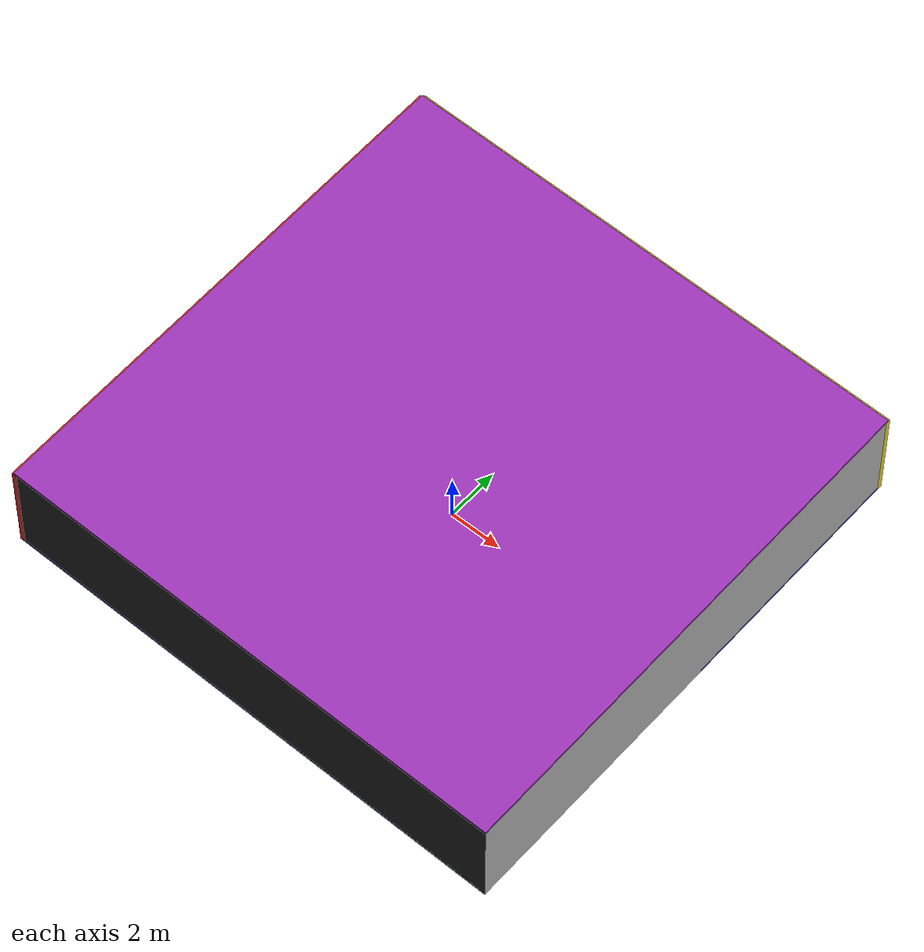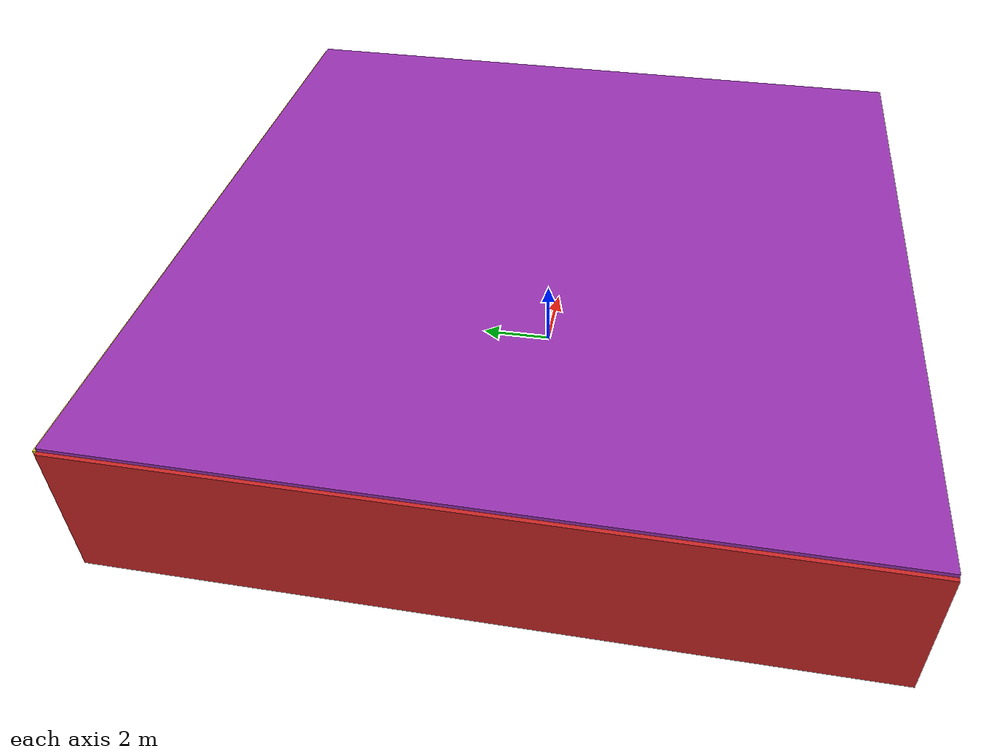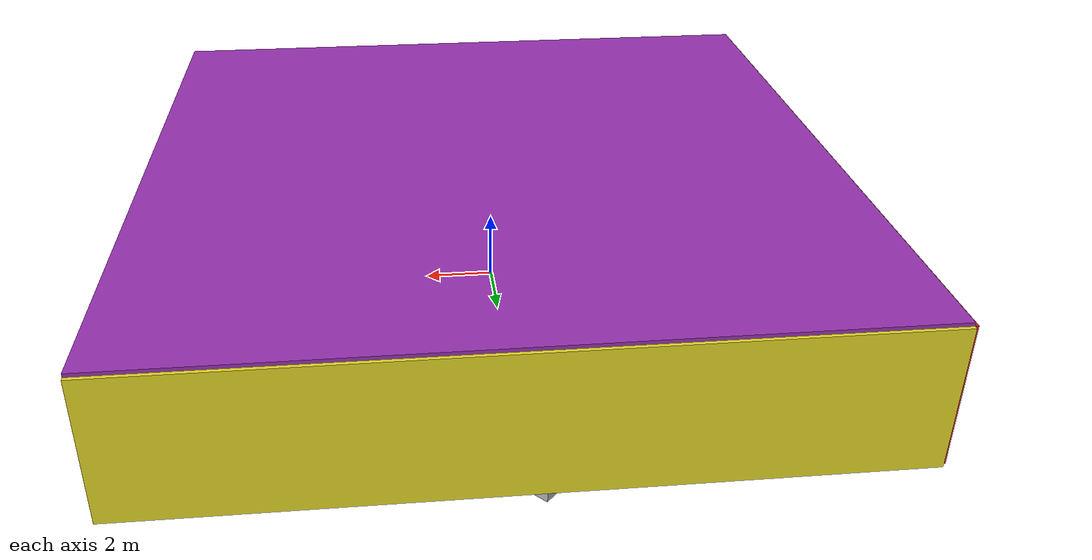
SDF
<sdf version="1.4">
 <world name="default">
  <physics type="ode">
   <max_step_size>0.001</max_step_size>
   <real_time_factor>1</real_time_factor>
   <real_time_update_rate>1000</real_time_update_rate>
   <gravity>0 0 -9.8</gravity>
  </physics>
  <scene><ambient>0.4 0.4 0.4 1</ambient><background>0.7 0.7 0.7 1</background><shadows>1</shadows></scene>
  <model name="Surrounding">
   <static>1</static>
   <link name="Ceiling">
    <collision name="Ceiling_Collision"><geometry><box><size>20 20 0.1</size></box></geometry></collision>
    <visual name="Ceiling_Visual">
     <geometry><box><size>20 20 0.1</size></box></geometry>
     <material>
      <script><uri>file://media/materials/scripts/gazebo.material</uri><name>Gazebo/Purple</name></script>
     </material>
    </visual>
    <pose>0 0 4.05 0 0 0</pose>
   </link>
   <link name="Wall_South">
    <collision name="Wall_South_Collision">
     <geometry><box><size>20 0 4</size></box></geometry>
     <pose>0 0 2 0 -0 0</pose>
    </collision>
    <visual name="Wall_South_Visual">
     <pose>0 0 2 0 -0 0</pose>
     <geometry><box><size>20 0 4</size></box></geometry>
     <material>
      <script><uri>file://media/materials/scripts/gazebo.material</uri><name>Gazebo/FlatBlack</name></script>
     </material>
    </visual>
    <velocity_decay><linear>0</linear><angular>0</angular></velocity_decay>
    <pose>0 -10 0 0 -0 0</pose>
   </link>
   <link name="Wall_East">
    <collision name="Wall_21_Collision">
     <geometry><box><size>20 0 4</size></box></geometry>
     <pose>0 0 2 0 -0 0</pose>
    </collision>
    <visual name="Wall_21_Visual">
     <pose>0 0 2 0 -0 0</pose>
     <geometry><box><size>20 0 4</size></box></geometry>
     <material>
      <script><uri>file://media/materials/scripts/gazebo.material</uri><name>Gazebo/PioneerBody</name></script>
     </material>
    </visual>
    <velocity_decay><linear>0</linear><angular>0</angular></velocity_decay>
    <pose>10 0 0 0 -0 1.5708</pose>
   </link>
   <link name="Wall_North">
    <collision name="Wall_22_Collision">
     <geometry><box><size>20 0.2 4</size></box></geometry>
     <pose>0 0 2 0 -0 0</pose>
    </collision>
    <visual name="Wall_22_Visual">
     <pose>0 0 2 0 -0 0</pose>
     <geometry><box><size>20 0.2 4</size></box></geometry>
     <material>
      <script><uri>file://media/materials/scripts/gazebo.material</uri><name>Gazebo/YellowGlow</name></script>
     </material>
    </visual>
    <velocity_decay><linear>0</linear><angular>0</angular></velocity_decay>
    <pose>0 10 0 0 -0 0</pose>
   </link>
   <link name="Wall_West">
    <collision name="Wall_23_Collision">
     <geometry><box><size>20 0.2 4</size></box></geometry>
     <pose>0 0 2 0 -0 0</pose>
    </collision>
    <visual name="Wall_23_Visual">
     <pose>0 0 2 0 -0 0</pose>
     <geometry><box><size>20 0.2 4</size></box></geometry>
     <material>
      <script><uri>file://media/materials/scripts/gazebo.material</uri><name>Gazebo/RedBright</name></script>
     </material>
    </visual>
    <velocity_decay><linear>0</linear><angular>0</angular></velocity_decay>
    <pose>-10 0 0 0 0 -1.5708</pose>
   </link>
   <link name="Ground_link">
    <collision name="collision">
     <pose>0 0 .05 0 -0 0</pose>
     <geometry><box><size>20 20 0.1</size></box></geometry>
    </collision>
    <visual name="visual">
     <pose>0 0 .05 0 -0 0</pose>
     <geometry><box><size>20 20 0.1</size></box></geometry>
     <material>
      <script><uri>file://media/materials/scripts/gazebo.material</uri><name>Gazebo/BlueLaser</name></script>
     </material>
    </visual>
   </link>
   <static>1</static>
  </model>
  <spherical_coordinates>
   <surface_model>EARTH_WGS84</surface_model>
   <latitude_deg>0</latitude_deg>
   <longitude_deg>0</longitude_deg>
   <elevation>0</elevation>
   <heading_deg>0</heading_deg>
  </spherical_coordinates>
  <light name="lightball_0" type="diffuse">
   <diffuse>0.8 0.8 0.8 1</diffuse>
   <specular>0.2 0.2 0.2 1</specular>
   <attenuation>
    <range>100</range>
    <constant>0.7</constant>
    <linear>0.01</linear>
    <quadratic>0.001</quadratic>
   </attenuation>
   <direction>-0.5 0.1 -0.9</direction>
   <pose>-0.483005078603 -0.752647233544 1.73619257576 0 0 0</pose>
  </light>
  <light name="lightball_1" type="diffuse">
   <diffuse>0.8 0.8 0.8 1</diffuse>
   <specular>0.2 0.2 0.2 1</specular>
   <attenuation>
    <range>100</range>
    <constant>0.7</constant>
    <linear>0.01</linear>
    <quadratic>0.001</quadratic>
   </attenuation>
   <direction>-0.5 0.1 -0.9</direction>
   <pose>7.53705358968 -9.08660090961 2.64028973013 0 0 0</pose>
  </light>
  <light name="lightball_2" type="diffuse">
   <diffuse>0.8 0.8 0.8 1</diffuse>
   <specular>0.2 0.2 0.2 1</specular>
   <attenuation>
    <range>100</range>
    <constant>0.7</constant>
    <linear>0.01</linear>
    <quadratic>0.001</quadratic>
   </attenuation>
   <direction>-0.5 0.1 -0.9</direction>
   <pose>-3.56652028978 -3.14183741809 3.76835317519 0 0 0</pose>
  </light>
  <light name="lightball_3" type="diffuse">
   <diffuse>0.8 0.8 0.8 1</diffuse>
   <specular>0.2 0.2 0.2 1</specular>
   <attenuation>
    <range>100</range>
    <constant>0.7</constant>
    <linear>0.01</linear>
    <quadratic>0.001</quadratic>
   </attenuation>
   <direction>-0.5 0.1 -0.9</direction>
   <pose>2.43847302157 -0.902981796308 0.724926505475 0 0 0</pose>
  </light>
  <include>
   <uri>model://robocup_3Dsim_goal</uri>
   <pose>-7.34495575315 -6.76962958311 0 0 0 2.08073904231</pose>
  </include>
  <include>
   <uri>model://textured_shapes</uri>
   <pose>-4.2152774114 7.05470534636 0 0 0 2.66995973755</pose>
  </include>
  <include>
   <uri>model://textured_shapes</uri>
   <pose>-1.46926427844 8.07451820303 0 0 0 2.35559684588</pose>
  </include>
  <include><uri>model://cabinet</uri><pose>1.63109740432 -7.57579969823 0 0 0 1.81059957771</pose></include>
  <include><uri>model://cabinet</uri><pose>2.09899283774 -3.81074302024 0 0 0 1.91524972567</pose></include>
  <include>
   <uri>model://robocup_3Dsim_goal</uri>
   <pose>1.75479689142 5.26766752537 0 0 0 2.45543128755</pose>
  </include>
  <include>
   <uri>model://textured_shapes</uri>
   <pose>1.41112125232 7.11511641622 0 0 0 2.8910197469</pose>
  </include>
  <include>
   <uri>model://construction_cone</uri>
   <pose>6.90894010163 -7.57038813766 0 0 0 1.07990807028</pose>
  </include>
  <include>
   <uri>model://robocup_3Dsim_goal</uri>
   <pose>7.62254748686 4.50536217961 0 0 0 0.246737579447</pose>
  </include>
 </world>
</sdf>

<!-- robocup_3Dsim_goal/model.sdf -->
<sdf version="1.5">
  <model name="robocup_3d_goal">
    <static>true</static>
    <link name="left_post">
      <pose>0 1.05 0.45 0 0 0</pose>
      <collision name="collision">
        <geometry>
          <cylinder>
            <radius>0.05</radius>
            <length>0.9</length>
          </cylinder>
        </geometry>
      </collision>
      <visual name="visual">
        <geometry>
          <cylinder>
            <radius>0.05</radius>
            <length>0.9</length>
          </cylinder>
        </geometry>
        <material>
          <script>
            <uri>file://media/materials/scripts/gazebo.material</uri>
            <name>Gazebo/ZincYellow</name>
          </script>
        </material>
      </visual>
    </link>
    <link name="left_support_horiz_lower">
      <pose>0.30 1.05 0.01 0 0 0</pose>
      <collision name="collision">
        <geometry>
          <box>
            <size>0.50 0.02 0.02</size>
          </box>
        </geometry>
      </collision>
      <visual name="visual">
        <geometry>
          <box>
            <size>0.50 0.02 0.02</size>
          </box>
        </geometry>
        <material>
          <script>
            <uri>file://media/materials/scripts/gazebo.material</uri>
            <name>Gazebo/White</name>
          </script>
        </material>
      </visual>
    </link>
    <link name="left_support_horiz_upper">
      <pose>0.30 1.05 0.79 0 0 0</pose>
      <collision name="collision">
        <geometry>
          <box>
            <size>0.50 0.02 0.02</size>
          </box>
        </geometry>
      </collision>
      <visual name="visual">
        <geometry>
          <box>
            <size>0.50 0.02 0.02</size>
          </box>
        </geometry>
        <material>
          <script>
            <uri>file://media/materials/scripts/gazebo.material</uri>
            <name>Gazebo/White</name>
          </script>
        </material>
      </visual>
    </link>
    <link name="left_support_vertical">
      <pose>0.56 1.05 0.4 0 1.5708 0</pose>
      <collision name="collision">
        <geometry>
          <box>
            <size>0.80 0.02 0.02</size>
          </box>
        </geometry>
      </collision>
      <visual name="visual">
        <geometry>
          <box>
            <size>0.80 0.02 0.02</size>
          </box>
        </geometry>
        <material>
          <script>
            <uri>file://media/materials/scripts/gazebo.material</uri>
            <name>Gazebo/White</name>
          </script>
        </material>
      </visual>
    </link>
    <link name="right_support_horiz_lower">
      <pose>0.30 -1.05 0.01 0 0 0</pose>
      <collision name="collision">
        <geometry>
          <box>
            <size>0.50 0.02 0.02</size>
          </box>
        </geometry>
      </collision>
      <visual name="visual">
        <geometry>
          <box>
            <size>0.50 0.02 0.02</size>
          </box>
        </geometry>
        <material>
          <script>
            <uri>file://media/materials/scripts/gazebo.material</uri>
            <name>Gazebo/White</name>
          </script>
        </material>
      </visual>
    </link>
    <link name="right_support_horiz_upper">
      <pose>0.30 -1.05 0.79 0 0 0</pose>
      <collision name="collision">
        <geometry>
          <box>
            <size>0.50 0.02 0.02</size>
          </box>
        </geometry>
      </collision>
      <visual name="visual">
        <geometry>
          <box>
            <size>0.50 0.02 0.02</size>
          </box>
        </geometry>
        <material>
          <script>
            <uri>file://media/materials/scripts/gazebo.material</uri>
            <name>Gazebo/White</name>
          </script>
        </material>
      </visual>
    </link>
    <link name="right_support_vertical">
      <pose>0.56 -1.05 0.4 0 1.5708 0</pose>
      <collision name="collision">
        <geometry>
          <box>
            <size>0.80 0.02 0.02</size>
          </box>
        </geometry>
      </collision>
      <visual name="visual">
        <geometry>
          <box>
            <size>0.80 0.02 0.02</size>
          </box>
        </geometry>
        <material>
          <script>
            <uri>file://media/materials/scripts/gazebo.material</uri>
            <name>Gazebo/White</name>
          </script>
        </material>
      </visual>
    </link>
    <link name="center_support_horiz_lower">
      <pose>0.56 0 0.01 0 1.5708 0</pose>
      <collision name="collision">
        <geometry>
          <box>
            <size>0.02 2.08 0.02</size>
          </box>
        </geometry>
      </collision>
      <visual name="visual">
        <geometry>
          <box>
            <size>0.02 2.08 0.02</size>
          </box>
        </geometry>
        <material>
          <script>
            <uri>file://media/materials/scripts/gazebo.material</uri>
            <name>Gazebo/White</name>
          </script>
        </material>
      </visual>
    </link>
    <link name="center_support_horiz_upper">
      <pose>0.56 0 0.79 0 1.5708 0</pose>
      <collision name="collision">
        <geometry>
          <box>
            <size>0.02 2.08 0.02</size>
          </box>
        </geometry>
      </collision>
      <visual name="visual">
        <geometry>
          <box>
            <size>0.02 2.08 0.02</size>
          </box>
        </geometry>
        <material>
          <script>
            <uri>file://media/materials/scripts/gazebo.material</uri>
            <name>Gazebo/White</name>
          </script>
        </material>
      </visual>
    </link>
    <link name="right_post">
      <pose>0 -1.05 0.45 0 0 0</pose>
      <collision name="collision">
        <geometry>
          <cylinder>
            <radius>0.05</radius>
            <length>0.9</length>
          </cylinder>
        </geometry>
      </collision>
      <visual name="visual">
        <geometry>
          <cylinder>
            <radius>0.05</radius>
            <length>0.9</length>
          </cylinder>
        </geometry>
        <material>
          <script>
            <uri>file://media/materials/scripts/gazebo.material</uri>
            <name>Gazebo/ZincYellow</name>
          </script>
        </material>
      </visual>
    </link>
    <link name="crossbar">
      <pose>0 0 0.85 1.57 1.57 0</pose>
      <collision name="collision">
        <geometry>
          <cylinder>
            <radius>0.05</radius>
            <length>2.0</length>
          </cylinder>
        </geometry>
      </collision>
      <visual name="visual">
        <geometry>
          <cylinder>
            <radius>0.05</radius>
            <length>2.0</length>
          </cylinder>
        </geometry>
        <material>
          <script>
            <uri>file://media/materials/scripts/gazebo.material</uri>
            <name>Gazebo/ZincYellow</name>
          </script>
        </material>
      </visual>
    </link>
    <link name="center_net">
      <pose>0.56 0 0.40 0 0 0</pose>
      <collision name="collision">
        <geometry>
          <box>
            <size>0.01 2.1 0.80</size>
          </box>
        </geometry>
      </collision>
      <visual name="visual">
        <geometry>
          <box>
            <size>0.01 2.1 0.80</size>
          </box>
        </geometry>
        <material>
          <script>
            <uri>model://../model_source/models/robocup09_spl_field/materials/scripts/</uri>
            <uri>model://../model_source/models/robocup09_spl_field/materials/textures/</uri>
            <name>RoboCup/Net</name>
          </script>
        </material>
      </visual>
    </link>
    <link name="left_net">
      <pose>0.30 1.05 0.40 0 0 0</pose>
      <collision name="collision">
        <geometry>
          <box>
            <size>0.50 0.01 0.76</size>
          </box>
        </geometry>
      </collision>
      <visual name="visual">
        <geometry>
          <box>
            <size>0.50 0.01 0.76</size>
          </box>
        </geometry>
        <material>
          <script>
            <uri>model://../model_source/models/robocup09_spl_field/materials/scripts/</uri>
            <uri>model://../model_source/models/robocup09_spl_field/materials/textures/</uri>
            <name>RoboCup/Net</name>
          </script>
        </material>
      </visual>
    </link>
    <link name="right_net">
      <pose>0.30 -1.05 0.40 0 0 0</pose>
      <collision name="collision">
        <geometry>
          <box>
            <size>0.50 0.01 0.76</size>
          </box>
        </geometry>
      </collision>
      <visual name="visual">
        <geometry>
          <box>
            <size>0.50 0.01 0.76</size>
          </box>
        </geometry>
        <material>
          <script>
            <uri>model://../model_source/models/robocup09_spl_field/materials/scripts/</uri>
            <uri>model://../model_source/models/robocup09_spl_field/materials/textures/</uri>
            <name>RoboCup/Net</name>
          </script>
        </material>
      </visual>
    </link>
  </model>
</sdf>

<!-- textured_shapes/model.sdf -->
<sdf version="1.6">
  <model name="textured_shapes">
    <pose>0 0 0.5 0 0 0</pose>
    <link name="box">
      <pose>0 -1.5 0 0 0 0</pose>
      <collision name="collision">
        <geometry>
          <box>
            <size>1 1 1</size>
          </box>
        </geometry>
      </collision>
      <visual name="visual">
        <geometry>
          <box>
            <size>1 1 1</size>
          </box>
        </geometry>
        <material>
          <script>
            <uri>model://../model_source/models/textured_shapes/materials/scripts</uri>
            <uri>model://../model_source/models/textured_shapes/materials/textures</uri>
            <name>TexturedShape/Squares</name>
          </script>
        </material>
      </visual>
    </link>
    <link name="sphere">
      <collision name="collision">
        <geometry>
          <sphere>
            <radius>0.5</radius>
          </sphere>
        </geometry>
      </collision>
      <visual name="visual">
        <geometry>
          <sphere>
            <radius>0.5</radius>
          </sphere>
        </geometry>
        <material>
          <script>
            <uri>model://../model_source/models/textured_shapes/materials/scripts</uri>
            <uri>model://../model_source/models/textured_shapes/materials/textures</uri>
            <name>TexturedShape/Squares</name>
          </script>
        </material>
      </visual>
    </link>
    <link name="cylinder">
      <pose>0 1.5 0 0 0 0</pose>
      <collision name="collision">
        <geometry>
          <cylinder>
            <radius>0.5</radius>
            <length>1</length>
          </cylinder>
        </geometry>
      </collision>
      <visual name="visual">
        <geometry>
          <cylinder>
            <radius>0.5</radius>
            <length>1</length>
          </cylinder>
        </geometry>
        <material>
          <script>
            <uri>model://../model_source/models/textured_shapes/materials/scripts</uri>
            <uri>model://../model_source/models/textured_shapes/materials/textures</uri>
            <name>TexturedShape/Squares</name>
          </script>
        </material>
      </visual>
    </link>
  </model>
</sdf>

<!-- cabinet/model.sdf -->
<sdf version="1.5">
  <model name="cabinet">
    <static>true</static>
    <link name="cabinet_bottom_plate">
      <inertial>
        <pose>0 0 -1 0 0 0</pose>
        <inertia>
          <ixx>2.050000</ixx>
          <ixy>0</ixy>
          <ixz>0</ixz>
          <iyy>2.050000</iyy>
          <iyz>0</iyz>
          <izz>2.050000</izz>
        </inertia>
        <mass>25.000000</mass>
      </inertial>
      <collision name="cabinet_bottom_plate_geom">
        <pose>0 0 0.010000 0 0 0</pose>
        <geometry>
          <box>
            <size>0.450000 0.450000 0.020000</size>
          </box>
        </geometry>
      </collision>
      <visual name="cabinet_bottom_plate_geom_visual">
        <pose>0 0 0.010000 0 0 0</pose>
        <geometry>
          <box>
            <size>0.450000 0.450000 0.020000</size>
          </box>
        </geometry>
        <material>
          <script>
            <uri>model://media/materials/scripts/gazebo.material</uri>
            <name>Gazebo/Wood</name>
          </script>
        </material>
      </visual>
      <collision name="cabinet_bottom_plate_geom_cabinet_back_plate">
        <pose>0.235000 0 0.510000 0 0 0</pose>
        <geometry>
          <box>
            <size>0.020000 0.450000 1.020000</size>
          </box>
        </geometry>
      </collision>
      <visual name="cabinet_bottom_plate_geom_cabinet_back_plate_visual">
        <pose>0.235000 0 0.510000 0 0 0</pose>
        <geometry>
          <box>
            <size>0.020000 0.450000 1.020000</size>
          </box>
        </geometry>
        <material>
          <script>
            <uri>model://media/materials/scripts/gazebo.material</uri>
            <name>Gazebo/Wood</name>
          </script>
        </material>
      </visual>
      <collision name="cabinet_bottom_plate_geom_cabinet_left_plate">
        <pose>0 0.235000 0.510000 0 0 0</pose>
        <geometry>
          <box>
            <size>0.450000 0.020000 1.020000</size>
          </box>
        </geometry>
      </collision>
      <visual name="cabinet_bottom_plate_geom_cabinet_left_plate_visual">
        <pose>0 0.235000 0.510000 0 0 0</pose>
        <geometry>
          <box>
            <size>0.450000 0.020000 1.020000</size>
          </box>
        </geometry>
        <material>
          <script>
            <uri>model://media/materials/scripts/gazebo.material</uri>
            <name>Gazebo/Wood</name>
          </script>
        </material>
      </visual>
      <collision name="cabinet_bottom_plate_geom_cabinet_middle_plate">
        <pose>0 0 0.510000 0 0 0</pose>
        <geometry>
          <box>
            <size>0.450000 0.450000 0.020000</size>
          </box>
        </geometry>
      </collision>
      <visual name="cabinet_bottom_plate_geom_cabinet_middle_plate_visual">
        <pose>0 0 0.510000 0 0 0</pose>
        <geometry>
          <box>
            <size>0.450000 0.450000 0.020000</size>
          </box>
        </geometry>
        <material>
          <script>
            <uri>model://media/materials/scripts/gazebo.material</uri>
            <name>Gazebo/Wood</name>
          </script>
        </material>
      </visual>
      <collision name="cabinet_bottom_plate_geom_cabinet_right_plate">
        <pose>0 -0.235000 0.510000 0 0 0</pose>
        <geometry>
          <box>
            <size>0.450000 0.020000 1.020000</size>
          </box>
        </geometry>
      </collision>
      <visual name="cabinet_bottom_plate_geom_cabinet_right_plate_visual">
        <pose>0 -0.235000 0.510000 0 0 0</pose>
        <geometry>
          <box>
            <size>0.450000 0.020000 1.020000</size>
          </box>
        </geometry>
        <material>
          <script>
            <uri>model://media/materials/scripts/gazebo.material</uri>
            <name>Gazebo/Wood</name>
          </script>
        </material>
      </visual>
      <collision name="cabinet_bottom_plate_geom_cabinet_top_plate">
        <pose>0 0 1.010000 0 0 0</pose>
        <geometry>
          <box>
            <size>0.450000 0.450000 0.020000</size>
          </box>
        </geometry>
      </collision>
      <visual name="cabinet_bottom_plate_geom_cabinet_top_plate_visual">
        <pose>0 0 1.010000 0 0 0</pose>
        <geometry>
          <box>
            <size>0.450000 0.450000 0.020000</size>
          </box>
        </geometry>
        <material>
          <script>
            <uri>model://media/materials/scripts/gazebo.material</uri>
            <name>Gazebo/Wood</name>
          </script>
        </material>
      </visual>
    </link>
  </model>
</sdf>

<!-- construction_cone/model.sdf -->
<sdf version="1.5">
  <model name="Construction Cone">
    <link name="link">
      <collision name="collision">
        <geometry>
          <mesh>
            <scale>10 10 10</scale>
            <uri>file://isr-testbed/construction_cone/meshes/construction_cone.dae</uri>
          </mesh>
        </geometry>
      </collision>
      <visual name="visual">
        <geometry>
          <mesh>
            <scale>10 10 10</scale>
            <uri>file://isr-testbed/construction_cone/meshes/construction_cone.dae</uri>
          </mesh>
        </geometry>
      </visual>
    </link>
  </model>
</sdf>
